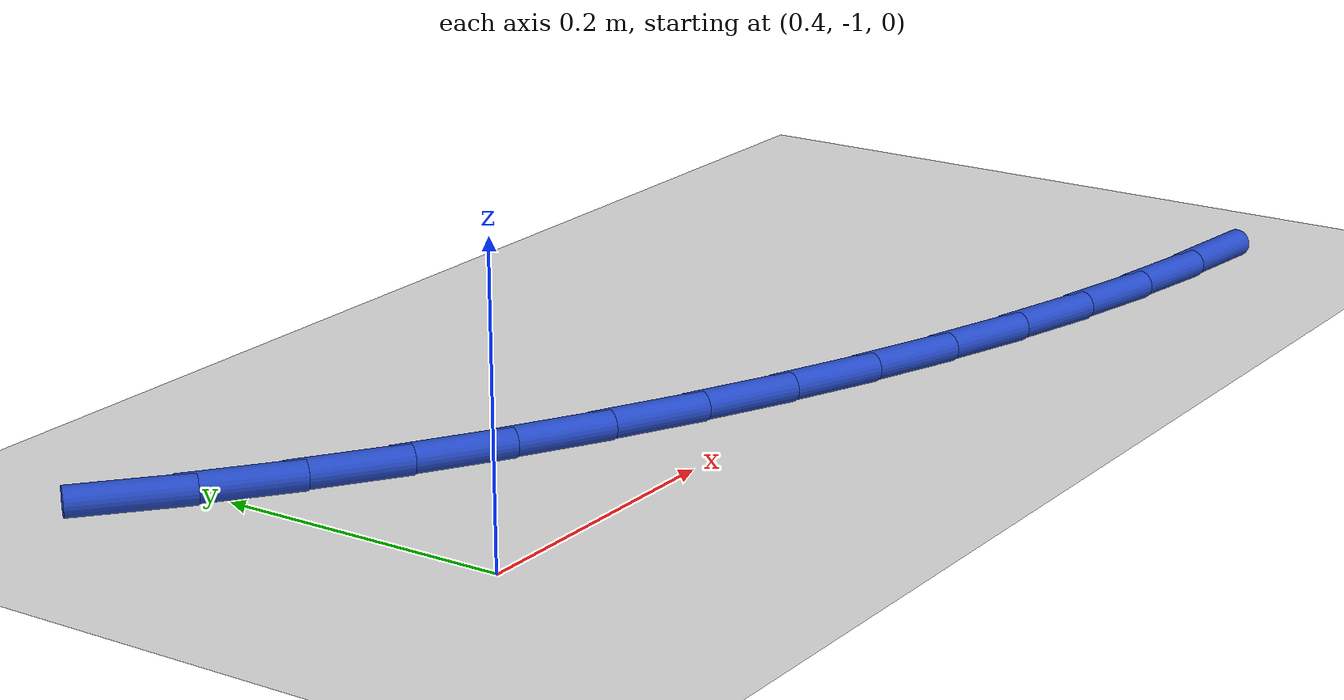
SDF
<sdf version="1.6">
 <world name="default">
  <model name="ground_plane">
   <static>1</static>
   <link name="link">
    <collision name="collision">
     <geometry><plane><normal>0 0 1</normal><size>100 100</size></plane></geometry>
     <surface><friction><ode><mu>100</mu><mu2>50</mu2></ode></friction></surface>
    </collision>
    <visual name="visual">
     <cast_shadows>0</cast_shadows>
     <geometry><plane><normal>0 0 1</normal><size>100 100</size></plane></geometry>
     <material>
      <script><uri>file://media/materials/scripts/gazebo.material</uri><name>Gazebo/WhiteGlow</name></script>
     </material>
    </visual>
   </link>
  </model>
  <model name="line">
   <link name="link_84">
    <pose>1.1567702059977951 -1.0851705063839145 0.01 0 1.57 -0.10837646450009275</pose>
    <collision name="collision">
     <geometry><cylinder><radius>0.01</radius><length>0.08</length></cylinder></geometry>
    </collision>
    <visual name="visual">
     <material>
      <script><name>Gazebo/Blue</name><uri>file://media/materials/scripts/gazebo.material</uri></script>
     </material>
     <geometry><cylinder><radius>0.01</radius><length>0.08</length></cylinder></geometry>
    </visual>
   </link>
   <link name="link_85">
    <pose>1.090497631859958 -1.0779598662180216 0.01 0 1.57 -0.16008253523966215</pose>
    <collision name="collision">
     <geometry><cylinder><radius>0.01</radius><length>0.08</length></cylinder></geometry>
    </collision>
    <visual name="visual">
     <material>
      <script><name>Gazebo/Blue</name><uri>file://media/materials/scripts/gazebo.material</uri></script>
     </material>
     <geometry><cylinder><radius>0.01</radius><length>0.08</length></cylinder></geometry>
    </visual>
   </link>
   <link name="link_86">
    <pose>1.024404653808999 -1.0672882199210652 0.01 0 1.57 -0.20968367266573606</pose>
    <collision name="collision">
     <geometry><cylinder><radius>0.01</radius><length>0.08</length></cylinder></geometry>
    </collision>
    <visual name="visual">
     <material>
      <script><name>Gazebo/Blue</name><uri>file://media/materials/scripts/gazebo.material</uri></script>
     </material>
     <geometry><cylinder><radius>0.01</radius><length>0.08</length></cylinder></geometry>
    </visual>
   </link>
   <link name="link_87">
    <pose>0.958655617674365 -1.0532960512525098 0.01 0 1.57 -0.2573751670419687</pose>
    <collision name="collision">
     <geometry><cylinder><radius>0.01</radius><length>0.08</length></cylinder></geometry>
    </collision>
    <visual name="visual">
     <material>
      <script><name>Gazebo/Blue</name><uri>file://media/materials/scripts/gazebo.material</uri></script>
     </material>
     <geometry><cylinder><radius>0.01</radius><length>0.08</length></cylinder></geometry>
    </visual>
   </link>
   <link name="link_88">
    <pose>0.8934148692855061 -1.0361238439718212 0.01 0 1.57 -0.303367715155313</pose>
    <collision name="collision">
     <geometry><cylinder><radius>0.01</radius><length>0.08</length></cylinder></geometry>
    </collision>
    <visual name="visual">
     <material>
      <script><name>Gazebo/Blue</name><uri>file://media/materials/scripts/gazebo.material</uri></script>
     </material>
     <geometry><cylinder><radius>0.01</radius><length>0.08</length></cylinder></geometry>
    </visual>
   </link>
   <link name="link_89">
    <pose>0.8288467544718691 -1.0159120818384646 0.01 0 1.57 -0.3478820450946864</pose>
    <collision name="collision">
     <geometry><cylinder><radius>0.01</radius><length>0.08</length></cylinder></geometry>
    </collision>
    <visual name="visual">
     <material>
      <script><name>Gazebo/Blue</name><uri>file://media/materials/scripts/gazebo.material</uri></script>
     </material>
     <geometry><cylinder><radius>0.01</radius><length>0.08</length></cylinder></geometry>
    </visual>
   </link>
   <link name="link_90">
    <pose>0.7651156190629042 -0.9928012486119056 0.01 0 1.57 -0.39114530594739033</pose>
    <collision name="collision">
     <geometry><cylinder><radius>0.01</radius><length>0.08</length></cylinder></geometry>
    </collision>
    <visual name="visual">
     <material>
      <script><name>Gazebo/Blue</name><uri>file://media/materials/scripts/gazebo.material</uri></script>
     </material>
     <geometry><cylinder><radius>0.01</radius><length>0.08</length></cylinder></geometry>
    </visual>
   </link>
   <link name="link_91">
    <pose>0.7023858088880575 -0.9669318280516079 0.01 0 1.57 -0.433388954454622</pose>
    <collision name="collision">
     <geometry><cylinder><radius>0.01</radius><length>0.08</length></cylinder></geometry>
    </collision>
    <visual name="visual">
     <material>
      <script><name>Gazebo/Blue</name><uri>file://media/materials/scripts/gazebo.material</uri></script>
     </material>
     <geometry><cylinder><radius>0.01</radius><length>0.08</length></cylinder></geometry>
    </visual>
   </link>
   <link name="link_92">
    <pose>0.6408216697767798 -0.9384443039170394 0.01 0 1.57 -0.47484807722733824</pose>
    <collision name="collision">
     <geometry><cylinder><radius>0.01</radius><length>0.08</length></cylinder></geometry>
    </collision>
    <visual name="visual">
     <material>
      <script><name>Gazebo/Blue</name><uri>file://media/materials/scripts/gazebo.material</uri></script>
     </material>
     <geometry><cylinder><radius>0.01</radius><length>0.08</length></cylinder></geometry>
    </visual>
   </link>
   <link name="link_93">
    <pose>0.5805875533234567 -0.9074791477941856 0.01 0 1.57 -0.5165600556167952</pose>
    <collision name="collision">
     <geometry><cylinder><radius>0.01</radius><length>0.08</length></cylinder></geometry>
    </collision>
    <visual name="visual">
     <material>
      <script><name>Gazebo/Blue</name><uri>file://media/materials/scripts/gazebo.material</uri></script>
     </material>
     <geometry><cylinder><radius>0.01</radius><length>0.08</length></cylinder></geometry>
    </visual>
   </link>
   <link name="link_94">
    <pose>0.5218709640076712 -0.8741279407056975 0.01 0 1.57 -0.5613840369832164</pose>
    <collision name="collision">
     <geometry><cylinder><radius>0.01</radius><length>0.08</length></cylinder></geometry>
    </collision>
    <visual name="visual">
     <material>
      <script><name>Gazebo/Blue</name><uri>file://media/materials/scripts/gazebo.material</uri></script>
     </material>
     <geometry><cylinder><radius>0.01</radius><length>0.08</length></cylinder></geometry>
    </visual>
   </link>
   <link name="link_95">
    <pose>0.4649351983205329 -0.8383222182151325 0.01 0 1.57 -0.610090785193942</pose>
    <collision name="collision">
     <geometry><cylinder><radius>0.01</radius><length>0.08</length></cylinder></geometry>
    </collision>
    <visual name="visual">
     <material>
      <script><name>Gazebo/Blue</name><uri>file://media/materials/scripts/gazebo.material</uri></script>
     </material>
     <geometry><cylinder><radius>0.01</radius><length>0.08</length></cylinder></geometry>
    </visual>
   </link>
   <link name="link_96">
    <pose>0.41005903727741366 -0.7999608181420006 0.01 0 1.57 -0.6628849962539417</pose>
    <collision name="collision">
     <geometry><cylinder><radius>0.01</radius><length>0.08</length></cylinder></geometry>
    </collision>
    <visual name="visual">
     <material>
      <script><name>Gazebo/Blue</name><uri>file://media/materials/scripts/gazebo.material</uri></script>
     </material>
     <geometry><cylinder><radius>0.01</radius><length>0.08</length></cylinder></geometry>
    </visual>
   </link>
   <link name="link_97">
    <pose>0.3575212618936829 -0.7589425783058102 0.01 0 1.57 -0.719914831776059</pose>
    <collision name="collision">
     <geometry><cylinder><radius>0.01</radius><length>0.08</length></cylinder></geometry>
    </collision>
    <visual name="visual">
     <material>
      <script><name>Gazebo/Blue</name><uri>file://media/materials/scripts/gazebo.material</uri></script>
     </material>
     <geometry><cylinder><radius>0.01</radius><length>0.08</length></cylinder></geometry>
    </visual>
   </link>
  </model>
 </world>
</sdf>
